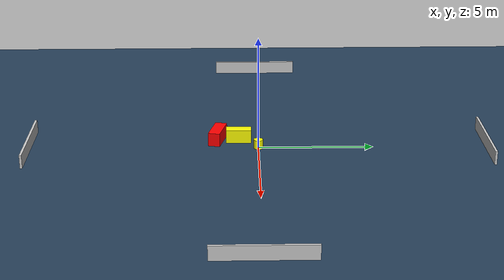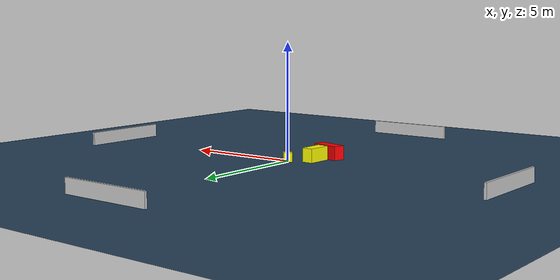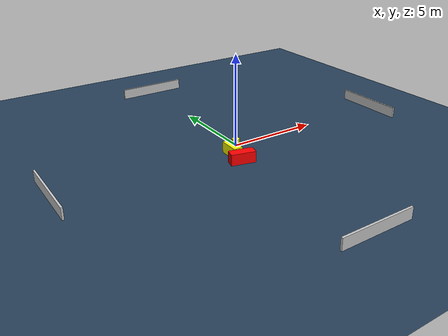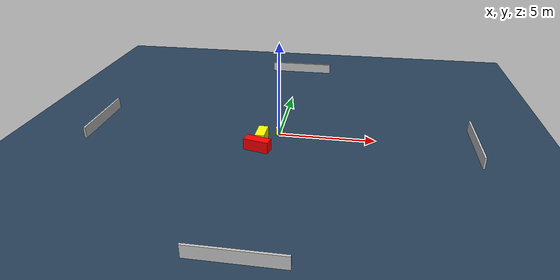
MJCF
<?xml version="1.0" ?>
<mujoco model="generated_environment">
  <option timestep="0.01" integrator="RK4" cone="elliptic"/>
  <default>
    <geom density="1"/>
  </default>
  <asset>
    <texture builtin="gradient" height="3072" name="skybox" rgb1="0.3 0.5 0.7" rgb2="0 0 0" type="skybox" width="512"/>
    <texture builtin="checker" height="300" name="groundplane" rgb1="0.2 0.3 0.4" rgb2="0.1 0.2 0.3" type="2d" width="300"/>
    <material name="groundplane" reflectance="0.2" texrepeat="5 5" texture="groundplane"/>
  </asset>
  <worldbody>
    <light dir="0 0 -1" directional="true" pos="0 0 1.5"/>
    <geom condim="3" friction="0.5 0.005 0.001" material="groundplane" name="floor" pos="0 0 0" size="0 0 0.05" type="plane"/>
    <body name="walls">
      <geom name="wall_1" condim="4" pos="-10.0 0.0 0.3" rgba="0.800000011920929 0.800000011920929 0.800000011920929 1.0" size="0.05 2.0 0.3" type="box"/>
      <geom name="wall_2" condim="4" pos="10.0 0.0 0.3" rgba="0.800000011920929 0.800000011920929 0.800000011920929 1.0" size="0.05 2.0 0.3" type="box"/>
      <geom name="wall_3" condim="4" pos="0.0 -10.0 0.3" rgba="0.800000011920929 0.800000011920929 0.800000011920929 1.0" size="2.0 0.05 0.3" type="box"/>
      <geom name="wall_4" condim="4" pos="0.0 10.0 0.3" rgba="0.800000011920929 0.800000011920929 0.800000011920929 1.0" size="2.0 0.05 0.3" type="box"/>
    </body>
    <body name="robot">
      <joint name="joint_x" type="slide" pos="0 0 0" axis="1 0 0"/>
      <joint name="joint_y" type="slide" pos="0 0 0" axis="0 1 0"/>
      <geom name="robot" type="cylinder" pos="0.0 0.0 0.2" size="0.2 0.2 0.0" mass="5.0" friction="1.0 0.005 0.0001" condim="4" rgba="1.0 1.0 0.0 1.0"/>
    </body>
    <body name="obstacle_1_movable">
      <geom name="obstacle_1_movable" condim="4" pos="-0.8003939148671615 -0.8605543824110142 0.3" euler="0 0 88.76079547621192" friction="0.0 0.005 0.001" rgba="1.0 1.0 0.0 1.0" size="0.5508986828768774 0.24537438323509617 0.3" type="box" mass="0.1"/>
      <joint type="free"/>
    </body>
    <body name="obstacle_2_static">
      <geom name="obstacle_2_static" condim="4" pos="-0.8490423663818387 -1.7909805175839293 0.3" euler="0 0 256.3040538459855" friction="0.0 0.005 0.001" rgba="1.0 0.0 0.0 1.0" size="0.2590472441191978 0.6546920169316934 0.3" type="box"/>
    </body>
  </worldbody>
  <actuator>
    <motor name="actuator_x" joint="joint_x" gear="1" ctrlrange="-1 1"/>
    <motor name="actuator_y" joint="joint_y" gear="1" ctrlrange="-1 1"/>
  </actuator>
</mujoco>
